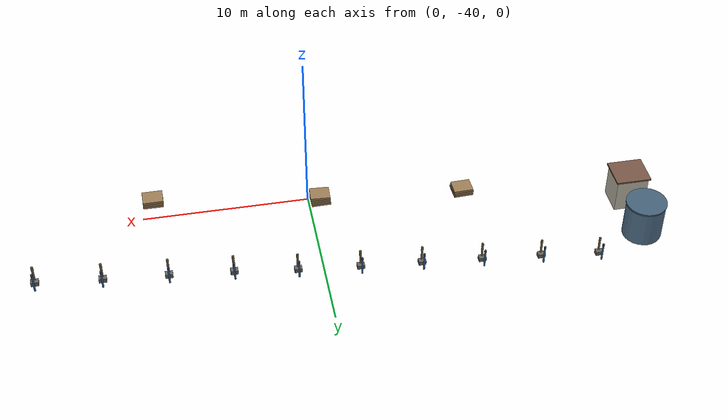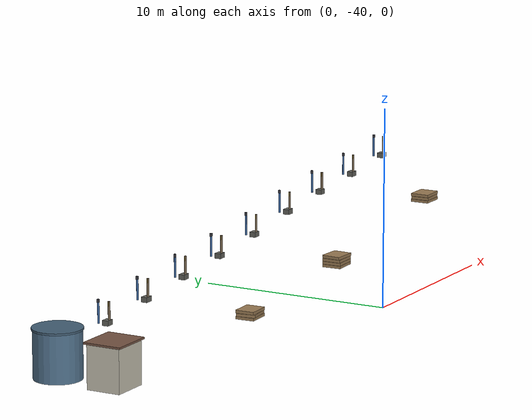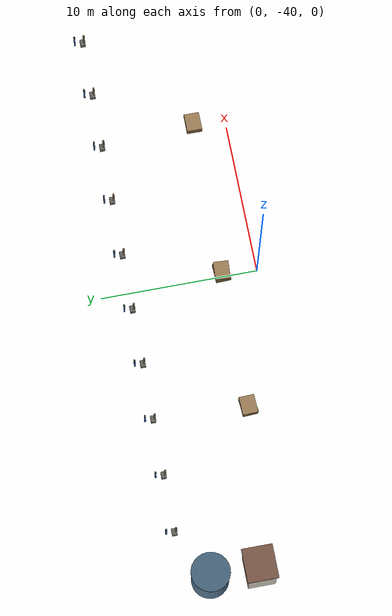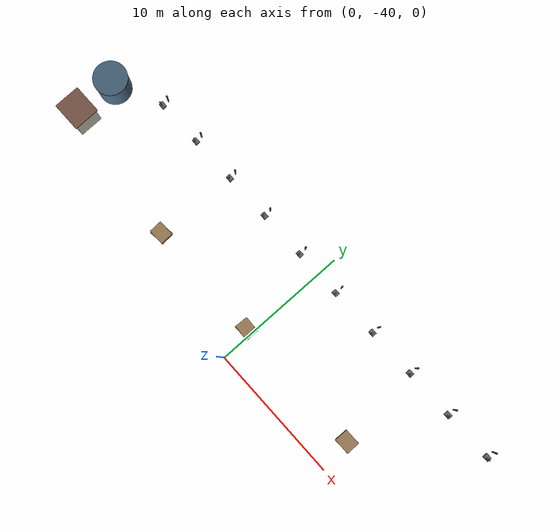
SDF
<sdf version="1.9">
 <world name="orchard_10x41">
  <model name="headland_S">
   <static>true</static>
   <link name="link">
    <visual name="markerpost_1">
     <pose>-15.750 -31.800 1.067 0.0000 0.0000 0.0000</pose>
     <geometry><cylinder><radius>0.0600</radius><length>1.1500</length></cylinder></geometry>
     <material>
      <ambient>0.400 0.340 0.260 1</ambient>
      <diffuse>0.440 0.374 0.286 1</diffuse>
      <specular>0.120 0.102 0.078 1</specular>
     </material>
     <plugin filename="gz-sim-label-system" name="gz::sim::systems::Label"><label>60</label></plugin>
    </visual>
    <visual name="reflector_2">
     <pose>-15.750 -31.800 1.512 0.0000 0.0000 0.0000</pose>
     <geometry><box><size>0.1400 0.0200 0.2000</size></box></geometry>
     <material>
      <ambient>0.850 0.720 0.180 1</ambient>
      <diffuse>0.935 0.792 0.198 1</diffuse>
      <specular>0.255 0.216 0.054 1</specular>
     </material>
     <plugin filename="gz-sim-label-system" name="gz::sim::systems::Label"><label>60</label></plugin>
    </visual>
    <visual name="markerpost_3">
     <pose>-12.250 -31.800 1.480 0.0000 0.0000 0.0000</pose>
     <geometry><cylinder><radius>0.0600</radius><length>1.1500</length></cylinder></geometry>
     <material>
      <ambient>0.400 0.340 0.260 1</ambient>
      <diffuse>0.440 0.374 0.286 1</diffuse>
      <specular>0.120 0.102 0.078 1</specular>
     </material>
     <plugin filename="gz-sim-label-system" name="gz::sim::systems::Label"><label>60</label></plugin>
    </visual>
    <visual name="reflector_4">
     <pose>-12.250 -31.800 1.925 0.0000 0.0000 0.0000</pose>
     <geometry><box><size>0.1400 0.0200 0.2000</size></box></geometry>
     <material>
      <ambient>0.850 0.720 0.180 1</ambient>
      <diffuse>0.935 0.792 0.198 1</diffuse>
      <specular>0.255 0.216 0.054 1</specular>
     </material>
     <plugin filename="gz-sim-label-system" name="gz::sim::systems::Label"><label>60</label></plugin>
    </visual>
    <visual name="markerpost_5">
     <pose>-8.750 -31.800 1.834 0.0000 0.0000 0.0000</pose>
     <geometry><cylinder><radius>0.0600</radius><length>1.1500</length></cylinder></geometry>
     <material>
      <ambient>0.400 0.340 0.260 1</ambient>
      <diffuse>0.440 0.374 0.286 1</diffuse>
      <specular>0.120 0.102 0.078 1</specular>
     </material>
     <plugin filename="gz-sim-label-system" name="gz::sim::systems::Label"><label>60</label></plugin>
    </visual>
    <visual name="reflector_6">
     <pose>-8.750 -31.800 2.279 0.0000 0.0000 0.0000</pose>
     <geometry><box><size>0.1400 0.0200 0.2000</size></box></geometry>
     <material>
      <ambient>0.850 0.720 0.180 1</ambient>
      <diffuse>0.935 0.792 0.198 1</diffuse>
      <specular>0.255 0.216 0.054 1</specular>
     </material>
     <plugin filename="gz-sim-label-system" name="gz::sim::systems::Label"><label>60</label></plugin>
    </visual>
    <visual name="markerpost_7">
     <pose>-5.250 -31.800 2.188 0.0000 0.0000 0.0000</pose>
     <geometry><cylinder><radius>0.0600</radius><length>1.1500</length></cylinder></geometry>
     <material>
      <ambient>0.400 0.340 0.260 1</ambient>
      <diffuse>0.440 0.374 0.286 1</diffuse>
      <specular>0.120 0.102 0.078 1</specular>
     </material>
     <plugin filename="gz-sim-label-system" name="gz::sim::systems::Label"><label>60</label></plugin>
    </visual>
    <visual name="reflector_8">
     <pose>-5.250 -31.800 2.633 0.0000 0.0000 0.0000</pose>
     <geometry><box><size>0.1400 0.0200 0.2000</size></box></geometry>
     <material>
      <ambient>0.850 0.720 0.180 1</ambient>
      <diffuse>0.935 0.792 0.198 1</diffuse>
      <specular>0.255 0.216 0.054 1</specular>
     </material>
     <plugin filename="gz-sim-label-system" name="gz::sim::systems::Label"><label>60</label></plugin>
    </visual>
    <visual name="markerpost_9">
     <pose>-1.750 -31.800 2.512 0.0000 0.0000 0.0000</pose>
     <geometry><cylinder><radius>0.0600</radius><length>1.1500</length></cylinder></geometry>
     <material>
      <ambient>0.400 0.340 0.260 1</ambient>
      <diffuse>0.440 0.374 0.286 1</diffuse>
      <specular>0.120 0.102 0.078 1</specular>
     </material>
     <plugin filename="gz-sim-label-system" name="gz::sim::systems::Label"><label>60</label></plugin>
    </visual>
    <visual name="reflector_10">
     <pose>-1.750 -31.800 2.957 0.0000 0.0000 0.0000</pose>
     <geometry><box><size>0.1400 0.0200 0.2000</size></box></geometry>
     <material>
      <ambient>0.850 0.720 0.180 1</ambient>
      <diffuse>0.935 0.792 0.198 1</diffuse>
      <specular>0.255 0.216 0.054 1</specular>
     </material>
     <plugin filename="gz-sim-label-system" name="gz::sim::systems::Label"><label>60</label></plugin>
    </visual>
    <visual name="markerpost_11">
     <pose>1.750 -31.800 2.888 0.0000 0.0000 0.0000</pose>
     <geometry><cylinder><radius>0.0600</radius><length>1.1500</length></cylinder></geometry>
     <material>
      <ambient>0.400 0.340 0.260 1</ambient>
      <diffuse>0.440 0.374 0.286 1</diffuse>
      <specular>0.120 0.102 0.078 1</specular>
     </material>
     <plugin filename="gz-sim-label-system" name="gz::sim::systems::Label"><label>60</label></plugin>
    </visual>
    <visual name="reflector_12">
     <pose>1.750 -31.800 3.333 0.0000 0.0000 0.0000</pose>
     <geometry><box><size>0.1400 0.0200 0.2000</size></box></geometry>
     <material>
      <ambient>0.850 0.720 0.180 1</ambient>
      <diffuse>0.935 0.792 0.198 1</diffuse>
      <specular>0.255 0.216 0.054 1</specular>
     </material>
     <plugin filename="gz-sim-label-system" name="gz::sim::systems::Label"><label>60</label></plugin>
    </visual>
    <visual name="markerpost_13">
     <pose>5.250 -31.800 3.375 0.0000 0.0000 0.0000</pose>
     <geometry><cylinder><radius>0.0600</radius><length>1.1500</length></cylinder></geometry>
     <material>
      <ambient>0.400 0.340 0.260 1</ambient>
      <diffuse>0.440 0.374 0.286 1</diffuse>
      <specular>0.120 0.102 0.078 1</specular>
     </material>
     <plugin filename="gz-sim-label-system" name="gz::sim::systems::Label"><label>60</label></plugin>
    </visual>
    <visual name="reflector_14">
     <pose>5.250 -31.800 3.820 0.0000 0.0000 0.0000</pose>
     <geometry><box><size>0.1400 0.0200 0.2000</size></box></geometry>
     <material>
      <ambient>0.850 0.720 0.180 1</ambient>
      <diffuse>0.935 0.792 0.198 1</diffuse>
      <specular>0.255 0.216 0.054 1</specular>
     </material>
     <plugin filename="gz-sim-label-system" name="gz::sim::systems::Label"><label>60</label></plugin>
    </visual>
    <visual name="markerpost_15">
     <pose>8.750 -31.800 3.755 0.0000 0.0000 0.0000</pose>
     <geometry><cylinder><radius>0.0600</radius><length>1.1500</length></cylinder></geometry>
     <material>
      <ambient>0.400 0.340 0.260 1</ambient>
      <diffuse>0.440 0.374 0.286 1</diffuse>
      <specular>0.120 0.102 0.078 1</specular>
     </material>
     <plugin filename="gz-sim-label-system" name="gz::sim::systems::Label"><label>60</label></plugin>
    </visual>
    <visual name="reflector_16">
     <pose>8.750 -31.800 4.200 0.0000 0.0000 0.0000</pose>
     <geometry><box><size>0.1400 0.0200 0.2000</size></box></geometry>
     <material>
      <ambient>0.850 0.720 0.180 1</ambient>
      <diffuse>0.935 0.792 0.198 1</diffuse>
      <specular>0.255 0.216 0.054 1</specular>
     </material>
     <plugin filename="gz-sim-label-system" name="gz::sim::systems::Label"><label>60</label></plugin>
    </visual>
    <visual name="markerpost_17">
     <pose>12.250 -31.800 4.057 0.0000 0.0000 0.0000</pose>
     <geometry><cylinder><radius>0.0600</radius><length>1.1500</length></cylinder></geometry>
     <material>
      <ambient>0.400 0.340 0.260 1</ambient>
      <diffuse>0.440 0.374 0.286 1</diffuse>
      <specular>0.120 0.102 0.078 1</specular>
     </material>
     <plugin filename="gz-sim-label-system" name="gz::sim::systems::Label"><label>60</label></plugin>
    </visual>
    <visual name="reflector_18">
     <pose>12.250 -31.800 4.502 0.0000 0.0000 0.0000</pose>
     <geometry><box><size>0.1400 0.0200 0.2000</size></box></geometry>
     <material>
      <ambient>0.850 0.720 0.180 1</ambient>
      <diffuse>0.935 0.792 0.198 1</diffuse>
      <specular>0.255 0.216 0.054 1</specular>
     </material>
     <plugin filename="gz-sim-label-system" name="gz::sim::systems::Label"><label>60</label></plugin>
    </visual>
    <visual name="markerpost_19">
     <pose>15.750 -31.800 4.445 0.0000 0.0000 0.0000</pose>
     <geometry><cylinder><radius>0.0600</radius><length>1.1500</length></cylinder></geometry>
     <material>
      <ambient>0.400 0.340 0.260 1</ambient>
      <diffuse>0.440 0.374 0.286 1</diffuse>
      <specular>0.120 0.102 0.078 1</specular>
     </material>
     <plugin filename="gz-sim-label-system" name="gz::sim::systems::Label"><label>60</label></plugin>
    </visual>
    <visual name="reflector_20">
     <pose>15.750 -31.800 4.890 0.0000 0.0000 0.0000</pose>
     <geometry><box><size>0.1400 0.0200 0.2000</size></box></geometry>
     <material>
      <ambient>0.850 0.720 0.180 1</ambient>
      <diffuse>0.935 0.792 0.198 1</diffuse>
      <specular>0.255 0.216 0.054 1</specular>
     </material>
     <plugin filename="gz-sim-label-system" name="gz::sim::systems::Label"><label>60</label></plugin>
    </visual>
    <visual name="standpipe_21">
     <pose>-15.750 -31.200 1.017 0.0000 0.0000 0.0000</pose>
     <geometry><cylinder><radius>0.0500</radius><length>1.0500</length></cylinder></geometry>
     <material>
      <ambient>0.200 0.350 0.550 1</ambient>
      <diffuse>0.220 0.385 0.605 1</diffuse>
      <specular>0.060 0.105 0.165 1</specular>
     </material>
     <plugin filename="gz-sim-label-system" name="gz::sim::systems::Label"><label>67</label></plugin>
    </visual>
    <visual name="valve_22">
     <pose>-15.750 -31.200 1.592 0.0000 0.0000 0.0000</pose>
     <geometry><box><size>0.1000 0.1000 0.1600</size></box></geometry>
     <material>
      <ambient>0.250 0.250 0.280 1</ambient>
      <diffuse>0.275 0.275 0.308 1</diffuse>
      <specular>0.075 0.075 0.084 1</specular>
     </material>
     <plugin filename="gz-sim-label-system" name="gz::sim::systems::Label"><label>67</label></plugin>
    </visual>
    <visual name="valvebox_23">
     <pose>-15.750 -31.700 0.602 0.0000 0.0000 0.0000</pose>
     <geometry><box><size>0.4200 0.3200 0.2600</size></box></geometry>
     <material>
      <ambient>0.350 0.350 0.330 1</ambient>
      <diffuse>0.385 0.385 0.363 1</diffuse>
      <specular>0.105 0.105 0.099 1</specular>
     </material>
     <plugin filename="gz-sim-label-system" name="gz::sim::systems::Label"><label>67</label></plugin>
    </visual>
    <visual name="standpipe_24">
     <pose>-12.250 -31.200 1.430 0.0000 0.0000 0.0000</pose>
     <geometry><cylinder><radius>0.0500</radius><length>1.0500</length></cylinder></geometry>
     <material>
      <ambient>0.200 0.350 0.550 1</ambient>
      <diffuse>0.220 0.385 0.605 1</diffuse>
      <specular>0.060 0.105 0.165 1</specular>
     </material>
     <plugin filename="gz-sim-label-system" name="gz::sim::systems::Label"><label>67</label></plugin>
    </visual>
    <visual name="valve_25">
     <pose>-12.250 -31.200 2.005 0.0000 0.0000 0.0000</pose>
     <geometry><box><size>0.1000 0.1000 0.1600</size></box></geometry>
     <material>
      <ambient>0.250 0.250 0.280 1</ambient>
      <diffuse>0.275 0.275 0.308 1</diffuse>
      <specular>0.075 0.075 0.084 1</specular>
     </material>
     <plugin filename="gz-sim-label-system" name="gz::sim::systems::Label"><label>67</label></plugin>
    </visual>
    <visual name="valvebox_26">
     <pose>-12.250 -31.700 1.015 0.0000 0.0000 0.0000</pose>
     <geometry><box><size>0.4200 0.3200 0.2600</size></box></geometry>
     <material>
      <ambient>0.350 0.350 0.330 1</ambient>
      <diffuse>0.385 0.385 0.363 1</diffuse>
      <specular>0.105 0.105 0.099 1</specular>
     </material>
     <plugin filename="gz-sim-label-system" name="gz::sim::systems::Label"><label>67</label></plugin>
    </visual>
    <visual name="standpipe_27">
     <pose>-8.750 -31.200 1.784 0.0000 0.0000 0.0000</pose>
     <geometry><cylinder><radius>0.0500</radius><length>1.0500</length></cylinder></geometry>
     <material>
      <ambient>0.200 0.350 0.550 1</ambient>
      <diffuse>0.220 0.385 0.605 1</diffuse>
      <specular>0.060 0.105 0.165 1</specular>
     </material>
     <plugin filename="gz-sim-label-system" name="gz::sim::systems::Label"><label>67</label></plugin>
    </visual>
    <visual name="valve_28">
     <pose>-8.750 -31.200 2.359 0.0000 0.0000 0.0000</pose>
     <geometry><box><size>0.1000 0.1000 0.1600</size></box></geometry>
     <material>
      <ambient>0.250 0.250 0.280 1</ambient>
      <diffuse>0.275 0.275 0.308 1</diffuse>
      <specular>0.075 0.075 0.084 1</specular>
     </material>
     <plugin filename="gz-sim-label-system" name="gz::sim::systems::Label"><label>67</label></plugin>
    </visual>
    <visual name="valvebox_29">
     <pose>-8.750 -31.700 1.369 0.0000 0.0000 0.0000</pose>
     <geometry><box><size>0.4200 0.3200 0.2600</size></box></geometry>
     <material>
      <ambient>0.350 0.350 0.330 1</ambient>
      <diffuse>0.385 0.385 0.363 1</diffuse>
      <specular>0.105 0.105 0.099 1</specular>
     </material>
     <plugin filename="gz-sim-label-system" name="gz::sim::systems::Label"><label>67</label></plugin>
    </visual>
    <visual name="standpipe_30">
     <pose>-5.250 -31.200 2.138 0.0000 0.0000 0.0000</pose>
     <geometry><cylinder><radius>0.0500</radius><length>1.0500</length></cylinder></geometry>
     <material>
      <ambient>0.200 0.350 0.550 1</ambient>
      <diffuse>0.220 0.385 0.605 1</diffuse>
      <specular>0.060 0.105 0.165 1</specular>
     </material>
     <plugin filename="gz-sim-label-system" name="gz::sim::systems::Label"><label>67</label></plugin>
    </visual>
    <visual name="valve_31">
     <pose>-5.250 -31.200 2.713 0.0000 0.0000 0.0000</pose>
     <geometry><box><size>0.1000 0.1000 0.1600</size></box></geometry>
     <material>
      <ambient>0.250 0.250 0.280 1</ambient>
      <diffuse>0.275 0.275 0.308 1</diffuse>
      <specular>0.075 0.075 0.084 1</specular>
     </material>
     <plugin filename="gz-sim-label-system" name="gz::sim::systems::Label"><label>67</label></plugin>
    </visual>
    <visual name="valvebox_32">
     <pose>-5.250 -31.700 1.723 0.0000 0.0000 0.0000</pose>
     <geometry><box><size>0.4200 0.3200 0.2600</size></box></geometry>
     <material>
      <ambient>0.350 0.350 0.330 1</ambient>
      <diffuse>0.385 0.385 0.363 1</diffuse>
      <specular>0.105 0.105 0.099 1</specular>
     </material>
     <plugin filename="gz-sim-label-system" name="gz::sim::systems::Label"><label>67</label></plugin>
    </visual>
    <visual name="standpipe_33">
     <pose>-1.750 -31.200 2.463 0.0000 0.0000 0.0000</pose>
     <geometry><cylinder><radius>0.0500</radius><length>1.0500</length></cylinder></geometry>
     <material>
      <ambient>0.200 0.350 0.550 1</ambient>
      <diffuse>0.220 0.385 0.605 1</diffuse>
      <specular>0.060 0.105 0.165 1</specular>
     </material>
     <plugin filename="gz-sim-label-system" name="gz::sim::systems::Label"><label>67</label></plugin>
    </visual>
    <visual name="valve_34">
     <pose>-1.750 -31.200 3.038 0.0000 0.0000 0.0000</pose>
     <geometry><box><size>0.1000 0.1000 0.1600</size></box></geometry>
     <material>
      <ambient>0.250 0.250 0.280 1</ambient>
      <diffuse>0.275 0.275 0.308 1</diffuse>
      <specular>0.075 0.075 0.084 1</specular>
     </material>
     <plugin filename="gz-sim-label-system" name="gz::sim::systems::Label"><label>67</label></plugin>
    </visual>
    <visual name="valvebox_35">
     <pose>-1.750 -31.700 2.048 0.0000 0.0000 0.0000</pose>
     <geometry><box><size>0.4200 0.3200 0.2600</size></box></geometry>
     <material>
      <ambient>0.350 0.350 0.330 1</ambient>
      <diffuse>0.385 0.385 0.363 1</diffuse>
      <specular>0.105 0.105 0.099 1</specular>
     </material>
     <plugin filename="gz-sim-label-system" name="gz::sim::systems::Label"><label>67</label></plugin>
    </visual>
    <visual name="standpipe_36">
     <pose>1.750 -31.200 2.838 0.0000 0.0000 0.0000</pose>
     <geometry><cylinder><radius>0.0500</radius><length>1.0500</length></cylinder></geometry>
     <material>
      <ambient>0.200 0.350 0.550 1</ambient>
      <diffuse>0.220 0.385 0.605 1</diffuse>
      <specular>0.060 0.105 0.165 1</specular>
     </material>
     <plugin filename="gz-sim-label-system" name="gz::sim::systems::Label"><label>67</label></plugin>
    </visual>
    <visual name="valve_37">
     <pose>1.750 -31.200 3.413 0.0000 0.0000 0.0000</pose>
     <geometry><box><size>0.1000 0.1000 0.1600</size></box></geometry>
     <material>
      <ambient>0.250 0.250 0.280 1</ambient>
      <diffuse>0.275 0.275 0.308 1</diffuse>
      <specular>0.075 0.075 0.084 1</specular>
     </material>
     <plugin filename="gz-sim-label-system" name="gz::sim::systems::Label"><label>67</label></plugin>
    </visual>
    <visual name="valvebox_38">
     <pose>1.750 -31.700 2.423 0.0000 0.0000 0.0000</pose>
     <geometry><box><size>0.4200 0.3200 0.2600</size></box></geometry>
     <material>
      <ambient>0.350 0.350 0.330 1</ambient>
      <diffuse>0.385 0.385 0.363 1</diffuse>
      <specular>0.105 0.105 0.099 1</specular>
     </material>
     <plugin filename="gz-sim-label-system" name="gz::sim::systems::Label"><label>67</label></plugin>
    </visual>
    <visual name="standpipe_39">
     <pose>5.250 -31.200 3.325 0.0000 0.0000 0.0000</pose>
     <geometry><cylinder><radius>0.0500</radius><length>1.0500</length></cylinder></geometry>
     <material>
      <ambient>0.200 0.350 0.550 1</ambient>
      <diffuse>0.220 0.385 0.605 1</diffuse>
      <specular>0.060 0.105 0.165 1</specular>
     </material>
     <plugin filename="gz-sim-label-system" name="gz::sim::systems::Label"><label>67</label></plugin>
    </visual>
    <visual name="valve_40">
     <pose>5.250 -31.200 3.900 0.0000 0.0000 0.0000</pose>
     <geometry><box><size>0.1000 0.1000 0.1600</size></box></geometry>
     <material>
      <ambient>0.250 0.250 0.280 1</ambient>
      <diffuse>0.275 0.275 0.308 1</diffuse>
      <specular>0.075 0.075 0.084 1</specular>
     </material>
     <plugin filename="gz-sim-label-system" name="gz::sim::systems::Label"><label>67</label></plugin>
    </visual>
    <visual name="valvebox_41">
     <pose>5.250 -31.700 2.910 0.0000 0.0000 0.0000</pose>
     <geometry><box><size>0.4200 0.3200 0.2600</size></box></geometry>
     <material>
      <ambient>0.350 0.350 0.330 1</ambient>
      <diffuse>0.385 0.385 0.363 1</diffuse>
      <specular>0.105 0.105 0.099 1</specular>
     </material>
     <plugin filename="gz-sim-label-system" name="gz::sim::systems::Label"><label>67</label></plugin>
    </visual>
    <visual name="standpipe_42">
     <pose>8.750 -31.200 3.705 0.0000 0.0000 0.0000</pose>
     <geometry><cylinder><radius>0.0500</radius><length>1.0500</length></cylinder></geometry>
     <material>
      <ambient>0.200 0.350 0.550 1</ambient>
      <diffuse>0.220 0.385 0.605 1</diffuse>
      <specular>0.060 0.105 0.165 1</specular>
     </material>
     <plugin filename="gz-sim-label-system" name="gz::sim::systems::Label"><label>67</label></plugin>
    </visual>
    <visual name="valve_43">
     <pose>8.750 -31.200 4.280 0.0000 0.0000 0.0000</pose>
     <geometry><box><size>0.1000 0.1000 0.1600</size></box></geometry>
     <material>
      <ambient>0.250 0.250 0.280 1</ambient>
      <diffuse>0.275 0.275 0.308 1</diffuse>
      <specular>0.075 0.075 0.084 1</specular>
     </material>
     <plugin filename="gz-sim-label-system" name="gz::sim::systems::Label"><label>67</label></plugin>
    </visual>
    <visual name="valvebox_44">
     <pose>8.750 -31.700 3.290 0.0000 0.0000 0.0000</pose>
     <geometry><box><size>0.4200 0.3200 0.2600</size></box></geometry>
     <material>
      <ambient>0.350 0.350 0.330 1</ambient>
      <diffuse>0.385 0.385 0.363 1</diffuse>
      <specular>0.105 0.105 0.099 1</specular>
     </material>
     <plugin filename="gz-sim-label-system" name="gz::sim::systems::Label"><label>67</label></plugin>
    </visual>
    <visual name="standpipe_45">
     <pose>12.250 -31.200 4.007 0.0000 0.0000 0.0000</pose>
     <geometry><cylinder><radius>0.0500</radius><length>1.0500</length></cylinder></geometry>
     <material>
      <ambient>0.200 0.350 0.550 1</ambient>
      <diffuse>0.220 0.385 0.605 1</diffuse>
      <specular>0.060 0.105 0.165 1</specular>
     </material>
     <plugin filename="gz-sim-label-system" name="gz::sim::systems::Label"><label>67</label></plugin>
    </visual>
    <visual name="valve_46">
     <pose>12.250 -31.200 4.582 0.0000 0.0000 0.0000</pose>
     <geometry><box><size>0.1000 0.1000 0.1600</size></box></geometry>
     <material>
      <ambient>0.250 0.250 0.280 1</ambient>
      <diffuse>0.275 0.275 0.308 1</diffuse>
      <specular>0.075 0.075 0.084 1</specular>
     </material>
     <plugin filename="gz-sim-label-system" name="gz::sim::systems::Label"><label>67</label></plugin>
    </visual>
    <visual name="valvebox_47">
     <pose>12.250 -31.700 3.592 0.0000 0.0000 0.0000</pose>
     <geometry><box><size>0.4200 0.3200 0.2600</size></box></geometry>
     <material>
      <ambient>0.350 0.350 0.330 1</ambient>
      <diffuse>0.385 0.385 0.363 1</diffuse>
      <specular>0.105 0.105 0.099 1</specular>
     </material>
     <plugin filename="gz-sim-label-system" name="gz::sim::systems::Label"><label>67</label></plugin>
    </visual>
    <visual name="standpipe_48">
     <pose>15.750 -31.200 4.395 0.0000 0.0000 0.0000</pose>
     <geometry><cylinder><radius>0.0500</radius><length>1.0500</length></cylinder></geometry>
     <material>
      <ambient>0.200 0.350 0.550 1</ambient>
      <diffuse>0.220 0.385 0.605 1</diffuse>
      <specular>0.060 0.105 0.165 1</specular>
     </material>
     <plugin filename="gz-sim-label-system" name="gz::sim::systems::Label"><label>67</label></plugin>
    </visual>
    <visual name="valve_49">
     <pose>15.750 -31.200 4.970 0.0000 0.0000 0.0000</pose>
     <geometry><box><size>0.1000 0.1000 0.1600</size></box></geometry>
     <material>
      <ambient>0.250 0.250 0.280 1</ambient>
      <diffuse>0.275 0.275 0.308 1</diffuse>
      <specular>0.075 0.075 0.084 1</specular>
     </material>
     <plugin filename="gz-sim-label-system" name="gz::sim::systems::Label"><label>67</label></plugin>
    </visual>
    <visual name="valvebox_50">
     <pose>15.750 -31.700 3.980 0.0000 0.0000 0.0000</pose>
     <geometry><box><size>0.4200 0.3200 0.2600</size></box></geometry>
     <material>
      <ambient>0.350 0.350 0.330 1</ambient>
      <diffuse>0.385 0.385 0.363 1</diffuse>
      <specular>0.105 0.105 0.099 1</specular>
     </material>
     <plugin filename="gz-sim-label-system" name="gz::sim::systems::Label"><label>67</label></plugin>
    </visual>
    <visual name="tank_51">
     <pose>-18.950 -33.300 1.315 0.0000 0.0000 0.0000</pose>
     <geometry><cylinder><radius>1.1500</radius><length>2.3000</length></cylinder></geometry>
     <material>
      <ambient>0.300 0.420 0.520 1</ambient>
      <diffuse>0.330 0.462 0.572 1</diffuse>
      <specular>0.090 0.126 0.156 1</specular>
     </material>
     <plugin filename="gz-sim-label-system" name="gz::sim::systems::Label"><label>60</label></plugin>
    </visual>
    <visual name="tanklid_52">
     <pose>-18.950 -33.300 2.515 0.0000 0.0000 0.0000</pose>
     <geometry><cylinder><radius>1.2000</radius><length>0.1000</length></cylinder></geometry>
     <material>
      <ambient>0.240 0.340 0.420 1</ambient>
      <diffuse>0.264 0.374 0.462 1</diffuse>
      <specular>0.072 0.102 0.126 1</specular>
     </material>
     <plugin filename="gz-sim-label-system" name="gz::sim::systems::Label"><label>60</label></plugin>
    </visual>
    <visual name="pumphouse_53">
     <pose>-18.950 -36.300 1.217 0.0000 0.0000 0.0000</pose>
     <geometry><box><size>1.9000 1.7000 2.1000</size></box></geometry>
     <material>
      <ambient>0.720 0.700 0.640 1</ambient>
      <diffuse>0.792 0.770 0.704 1</diffuse>
      <specular>0.216 0.210 0.192 1</specular>
     </material>
     <plugin filename="gz-sim-label-system" name="gz::sim::systems::Label"><label>60</label></plugin>
    </visual>
    <visual name="pumproof_54">
     <pose>-18.950 -36.300 2.327 0.0000 0.0000 0.0000</pose>
     <geometry><box><size>2.1000 1.9000 0.1000</size></box></geometry>
     <material>
      <ambient>0.420 0.300 0.240 1</ambient>
      <diffuse>0.462 0.330 0.264 1</diffuse>
      <specular>0.126 0.090 0.072 1</specular>
     </material>
     <plugin filename="gz-sim-label-system" name="gz::sim::systems::Label"><label>60</label></plugin>
    </visual>
    <visual name="pallet_55">
     <pose>-8.996 -37.600 1.343 0.0000 0.0000 0.0469</pose>
     <geometry><box><size>1.1500 0.9500 0.1400</size></box></geometry>
     <material>
      <ambient>0.550 0.440 0.300 1</ambient>
      <diffuse>0.605 0.484 0.330 1</diffuse>
      <specular>0.165 0.132 0.090 1</specular>
     </material>
     <plugin filename="gz-sim-label-system" name="gz::sim::systems::Label"><label>62</label></plugin>
    </visual>
    <visual name="pallet_56">
     <pose>-8.996 -37.600 1.493 0.0000 0.0000 0.1390</pose>
     <geometry><box><size>1.1500 0.9500 0.1400</size></box></geometry>
     <material>
      <ambient>0.550 0.440 0.300 1</ambient>
      <diffuse>0.605 0.484 0.330 1</diffuse>
      <specular>0.165 0.132 0.090 1</specular>
     </material>
     <plugin filename="gz-sim-label-system" name="gz::sim::systems::Label"><label>62</label></plugin>
    </visual>
    <visual name="pallet_57">
     <pose>-8.996 -37.600 1.643 0.0000 0.0000 0.0328</pose>
     <geometry><box><size>1.1500 0.9500 0.1400</size></box></geometry>
     <material>
      <ambient>0.550 0.440 0.300 1</ambient>
      <diffuse>0.605 0.484 0.330 1</diffuse>
      <specular>0.165 0.132 0.090 1</specular>
     </material>
     <plugin filename="gz-sim-label-system" name="gz::sim::systems::Label"><label>62</label></plugin>
    </visual>
    <visual name="pallet_58">
     <pose>-0.389 -37.600 2.014 0.0000 0.0000 0.0325</pose>
     <geometry><box><size>1.1500 0.9500 0.1400</size></box></geometry>
     <material>
      <ambient>0.550 0.440 0.300 1</ambient>
      <diffuse>0.605 0.484 0.330 1</diffuse>
      <specular>0.165 0.132 0.090 1</specular>
     </material>
     <plugin filename="gz-sim-label-system" name="gz::sim::systems::Label"><label>62</label></plugin>
    </visual>
    <visual name="pallet_59">
     <pose>-0.389 -37.600 2.164 0.0000 0.0000 0.0203</pose>
     <geometry><box><size>1.1500 0.9500 0.1400</size></box></geometry>
     <material>
      <ambient>0.550 0.440 0.300 1</ambient>
      <diffuse>0.605 0.484 0.330 1</diffuse>
      <specular>0.165 0.132 0.090 1</specular>
     </material>
     <plugin filename="gz-sim-label-system" name="gz::sim::systems::Label"><label>62</label></plugin>
    </visual>
    <visual name="pallet_60">
     <pose>-0.389 -37.600 2.314 0.0000 0.0000 -0.0010</pose>
     <geometry><box><size>1.1500 0.9500 0.1400</size></box></geometry>
     <material>
      <ambient>0.550 0.440 0.300 1</ambient>
      <diffuse>0.605 0.484 0.330 1</diffuse>
      <specular>0.165 0.132 0.090 1</specular>
     </material>
     <plugin filename="gz-sim-label-system" name="gz::sim::systems::Label"><label>62</label></plugin>
    </visual>
    <visual name="pallet_61">
     <pose>-0.389 -37.600 2.464 0.0000 0.0000 -0.0591</pose>
     <geometry><box><size>1.1500 0.9500 0.1400</size></box></geometry>
     <material>
      <ambient>0.550 0.440 0.300 1</ambient>
      <diffuse>0.605 0.484 0.330 1</diffuse>
      <specular>0.165 0.132 0.090 1</specular>
     </material>
     <plugin filename="gz-sim-label-system" name="gz::sim::systems::Label"><label>62</label></plugin>
    </visual>
    <visual name="pallet_62">
     <pose>9.219 -37.600 3.434 0.0000 0.0000 -0.0089</pose>
     <geometry><box><size>1.1500 0.9500 0.1400</size></box></geometry>
     <material>
      <ambient>0.550 0.440 0.300 1</ambient>
      <diffuse>0.605 0.484 0.330 1</diffuse>
      <specular>0.165 0.132 0.090 1</specular>
     </material>
     <plugin filename="gz-sim-label-system" name="gz::sim::systems::Label"><label>62</label></plugin>
    </visual>
    <visual name="pallet_63">
     <pose>9.219 -37.600 3.584 0.0000 0.0000 0.0398</pose>
     <geometry><box><size>1.1500 0.9500 0.1400</size></box></geometry>
     <material>
      <ambient>0.550 0.440 0.300 1</ambient>
      <diffuse>0.605 0.484 0.330 1</diffuse>
      <specular>0.165 0.132 0.090 1</specular>
     </material>
     <plugin filename="gz-sim-label-system" name="gz::sim::systems::Label"><label>62</label></plugin>
    </visual>
    <visual name="pallet_64">
     <pose>9.219 -37.600 3.734 0.0000 0.0000 0.0064</pose>
     <geometry><box><size>1.1500 0.9500 0.1400</size></box></geometry>
     <material>
      <ambient>0.550 0.440 0.300 1</ambient>
      <diffuse>0.605 0.484 0.330 1</diffuse>
      <specular>0.165 0.132 0.090 1</specular>
     </material>
     <plugin filename="gz-sim-label-system" name="gz::sim::systems::Label"><label>62</label></plugin>
    </visual>
    <collision name="c0">
     <pose>-15.750 -31.800 1.067 0.0000 0.0000 0.0000</pose>
     <geometry><cylinder><radius>0.0700</radius><length>1.1500</length></cylinder></geometry>
    </collision>
    <collision name="c1">
     <pose>-12.250 -31.800 1.480 0.0000 0.0000 0.0000</pose>
     <geometry><cylinder><radius>0.0700</radius><length>1.1500</length></cylinder></geometry>
    </collision>
    <collision name="c2">
     <pose>-8.750 -31.800 1.834 0.0000 0.0000 0.0000</pose>
     <geometry><cylinder><radius>0.0700</radius><length>1.1500</length></cylinder></geometry>
    </collision>
    <collision name="c3">
     <pose>-5.250 -31.800 2.188 0.0000 0.0000 0.0000</pose>
     <geometry><cylinder><radius>0.0700</radius><length>1.1500</length></cylinder></geometry>
    </collision>
    <collision name="c4">
     <pose>-1.750 -31.800 2.512 0.0000 0.0000 0.0000</pose>
     <geometry><cylinder><radius>0.0700</radius><length>1.1500</length></cylinder></geometry>
    </collision>
    <collision name="c5">
     <pose>1.750 -31.800 2.888 0.0000 0.0000 0.0000</pose>
     <geometry><cylinder><radius>0.0700</radius><length>1.1500</length></cylinder></geometry>
    </collision>
    <collision name="c6">
     <pose>5.250 -31.800 3.375 0.0000 0.0000 0.0000</pose>
     <geometry><cylinder><radius>0.0700</radius><length>1.1500</length></cylinder></geometry>
    </collision>
    <collision name="c7">
     <pose>8.750 -31.800 3.755 0.0000 0.0000 0.0000</pose>
     <geometry><cylinder><radius>0.0700</radius><length>1.1500</length></cylinder></geometry>
    </collision>
    <collision name="c8">
     <pose>12.250 -31.800 4.057 0.0000 0.0000 0.0000</pose>
     <geometry><cylinder><radius>0.0700</radius><length>1.1500</length></cylinder></geometry>
    </collision>
    <collision name="c9">
     <pose>15.750 -31.800 4.445 0.0000 0.0000 0.0000</pose>
     <geometry><cylinder><radius>0.0700</radius><length>1.1500</length></cylinder></geometry>
    </collision>
    <collision name="c10">
     <pose>-15.750 -31.200 1.017 0.0000 0.0000 0.0000</pose>
     <geometry><cylinder><radius>0.0600</radius><length>1.0500</length></cylinder></geometry>
    </collision>
    <collision name="c11">
     <pose>-12.250 -31.200 1.430 0.0000 0.0000 0.0000</pose>
     <geometry><cylinder><radius>0.0600</radius><length>1.0500</length></cylinder></geometry>
    </collision>
    <collision name="c12">
     <pose>-8.750 -31.200 1.784 0.0000 0.0000 0.0000</pose>
     <geometry><cylinder><radius>0.0600</radius><length>1.0500</length></cylinder></geometry>
    </collision>
    <collision name="c13">
     <pose>-5.250 -31.200 2.138 0.0000 0.0000 0.0000</pose>
     <geometry><cylinder><radius>0.0600</radius><length>1.0500</length></cylinder></geometry>
    </collision>
    <collision name="c14">
     <pose>-1.750 -31.200 2.463 0.0000 0.0000 0.0000</pose>
     <geometry><cylinder><radius>0.0600</radius><length>1.0500</length></cylinder></geometry>
    </collision>
    <collision name="c15">
     <pose>1.750 -31.200 2.838 0.0000 0.0000 0.0000</pose>
     <geometry><cylinder><radius>0.0600</radius><length>1.0500</length></cylinder></geometry>
    </collision>
    <collision name="c16">
     <pose>5.250 -31.200 3.325 0.0000 0.0000 0.0000</pose>
     <geometry><cylinder><radius>0.0600</radius><length>1.0500</length></cylinder></geometry>
    </collision>
    <collision name="c17">
     <pose>8.750 -31.200 3.705 0.0000 0.0000 0.0000</pose>
     <geometry><cylinder><radius>0.0600</radius><length>1.0500</length></cylinder></geometry>
    </collision>
    <collision name="c18">
     <pose>12.250 -31.200 4.007 0.0000 0.0000 0.0000</pose>
     <geometry><cylinder><radius>0.0600</radius><length>1.0500</length></cylinder></geometry>
    </collision>
    <collision name="c19">
     <pose>15.750 -31.200 4.395 0.0000 0.0000 0.0000</pose>
     <geometry><cylinder><radius>0.0600</radius><length>1.0500</length></cylinder></geometry>
    </collision>
    <collision name="c20">
     <pose>-18.950 -33.300 1.315 0.0000 0.0000 0.0000</pose>
     <geometry><cylinder><radius>1.2000</radius><length>2.3000</length></cylinder></geometry>
    </collision>
    <collision name="c21">
     <pose>-18.950 -36.300 1.217 0.0000 0.0000 0.0000</pose>
     <geometry><box><size>1.9000 1.7000 2.1000</size></box></geometry>
    </collision>
    <collision name="c22">
     <pose>-8.996 -37.600 1.488 0.0000 0.0000 0.0000</pose>
     <geometry><box><size>1.2000 1.0000 0.4500</size></box></geometry>
    </collision>
    <collision name="c23">
     <pose>-0.389 -37.600 2.234 0.0000 0.0000 0.0000</pose>
     <geometry><box><size>1.2000 1.0000 0.6000</size></box></geometry>
    </collision>
    <collision name="c24">
     <pose>9.219 -37.600 3.579 0.0000 0.0000 0.0000</pose>
     <geometry><box><size>1.2000 1.0000 0.4500</size></box></geometry>
    </collision>
   </link>
  </model>
 </world>
</sdf>
